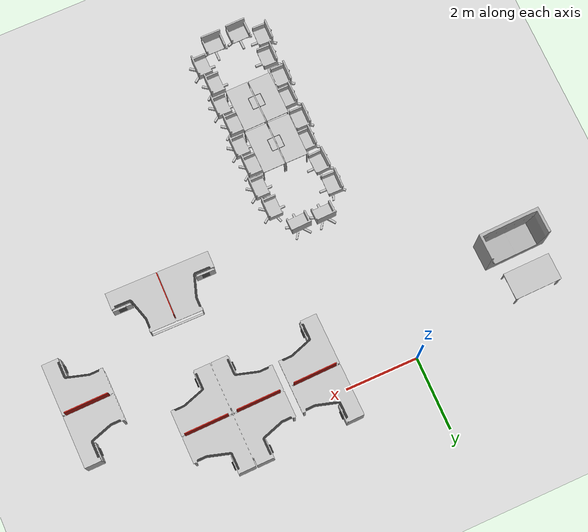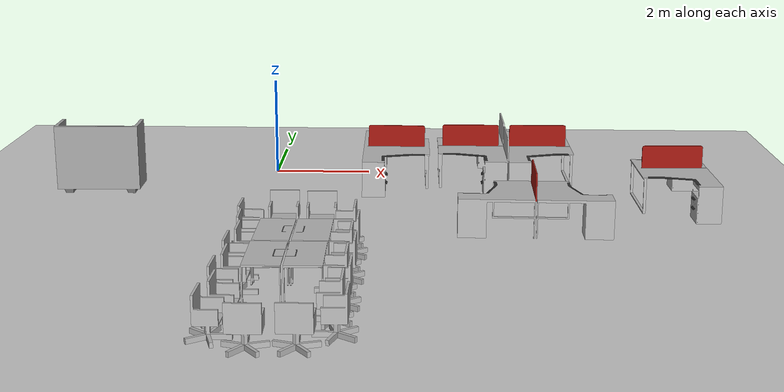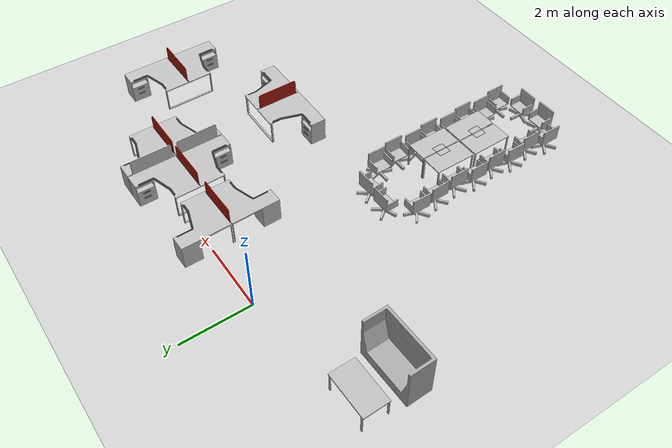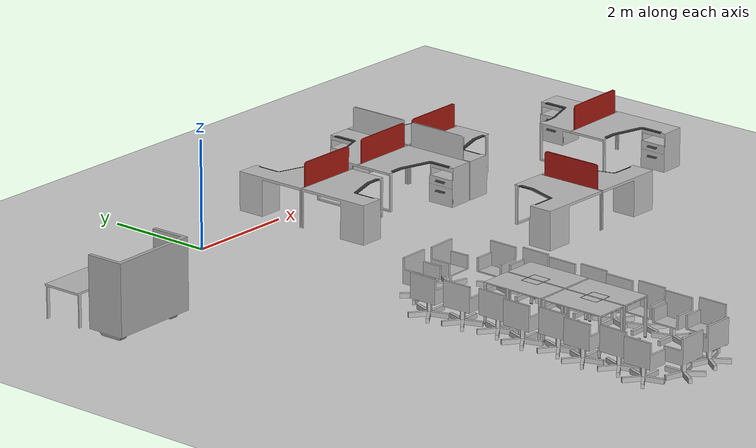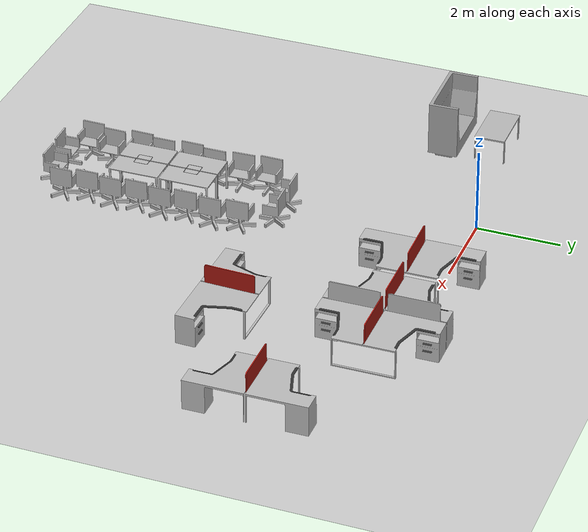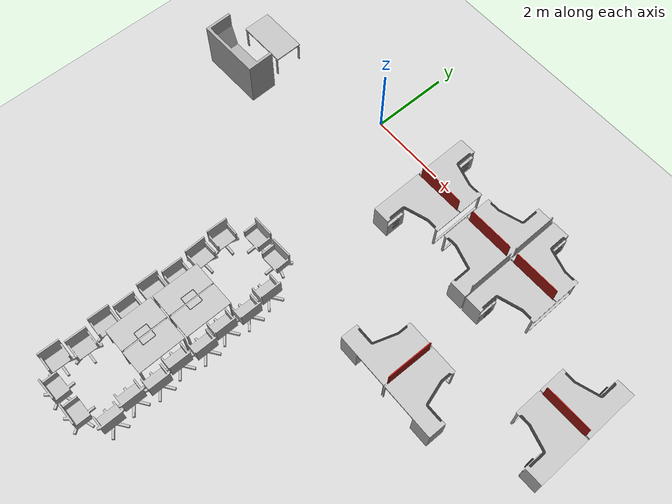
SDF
<sdf version="1.6">
 <world name="default">
  <model name="ground_plane">
   <static>1</static>
   <link name="link">
    <collision name="collision">
     <geometry><plane><normal>0 0 1</normal><size>100 100</size></plane></geometry>
     <surface><friction><ode><mu>100</mu><mu2>50</mu2></ode></friction></surface>
    </collision>
    <visual name="visual">
     <cast_shadows>0</cast_shadows>
     <geometry><plane><normal>0 0 1</normal><size>100 100</size></plane></geometry>
     <material>
      <script><uri>file://media/materials/scripts/gazebo.material</uri><name>Gazebo/Grey</name></script>
     </material>
    </visual>
   </link>
  </model>
  <include>
   <uri>model://rs_gazebo/models/ss_hq4/413_table</uri>
   <name>'413_table_1'</name>
   <pose>1.35826 -6.55524 0.415677 -1e-06 -6e-06 1.57798</pose>
  </include>
  <include>
   <uri>model://rs_gazebo/models/ss_hq4/413_table</uri>
   <name>'413_table_2'</name>
   <pose>0.711378 -7.8122 0.415681 1.2e-05 -6e-06 -1.55968</pose>
  </include>
  <include>
   <uri>model://rs_gazebo/models/ss_hq4/413_table</uri>
   <name>'413_table_3'</name>
   <pose>0.715416 -6.55909 0.41568 -3e-06 -0 -1.56994</pose>
  </include>
  <include>
   <uri>model://rs_gazebo/models/ss_hq4/413_table</uri>
   <name>'413_table_4'</name>
   <pose>1.35714 -7.80696 0.415681 1.2e-05 -6e-06 1.58535</pose>
  </include>
  <include>
   <uri>model://rs_gazebo/models/ss_hq4/413_meeting_chair</uri>
   <name>'413_meeting_chair_2'</name>
   <pose>0.187999 -6.40878 0.281792 -1e-06 -1e-06 1.56988</pose>
  </include>
  <include>
   <uri>model://rs_gazebo/models/ss_hq4/413_meeting_chair</uri>
   <name>'413_meeting_chair_3'</name>
   <pose>0.081497 -7.01654 0.281792 -1e-06 2e-06 1.56307</pose>
  </include>
  <include>
   <uri>model://rs_gazebo/models/ss_hq4/413_meeting_chair</uri>
   <name>'413_meeting_chair_4'</name>
   <pose>0.166702 -7.70382 0.281792 -0 -7e-06 1.57768</pose>
  </include>
  <include>
   <uri>model://rs_gazebo/models/ss_hq4/413_meeting_chair</uri>
   <name>'413_meeting_chair_4_clone'</name>
   <pose>0.058897 -8.30282 0.281792 0 -0 1.55151</pose>
  </include>
  <include>
   <uri>model://rs_gazebo/models/ss_hq4/413_meeting_chair</uri>
   <name>'413_meeting_chair_4_clone_0'</name>
   <pose>0.045568 -5.03866 0.281792 0 -0 1.55331</pose>
  </include>
  <include>
   <uri>model://rs_gazebo/models/ss_hq4/413_meeting_chair</uri>
   <name>'413_meeting_chair_4_clone_clone'</name>
   <pose>0.172639 -8.96147 0.281792 0 -0 1.55151</pose>
  </include>
  <include>
   <uri>model://rs_gazebo/models/ss_hq4/413_meeting_chair</uri>
   <name>'413_meeting_chair_4_clone_clone_0'</name>
   <pose>0.035102 -9.56899 0.281792 0 -0 1.55151</pose>
  </include>
  <include>
   <uri>model://rs_gazebo/models/ss_hq4/413_meeting_chair</uri>
   <name>'413_meeting_chair_4_clone_clone_1'</name>
   <pose>0.675891 -9.98419 0.281792 -1.2e-05 -1.9e-05 -3.12273</pose>
  </include>
  <include>
   <uri>model://rs_gazebo/models/ss_hq4/413_meeting_chair</uri>
   <name>'413_meeting_chair_4_clone_clone_2'</name>
   <pose>1.40384 -9.95187 0.281793 3e-06 2e-06 3.13307</pose>
  </include>
  <include>
   <uri>model://rs_gazebo/models/ss_hq4/413_meeting_chair</uri>
   <name>'413_meeting_chair_4_clone_clone_3'</name>
   <pose>0.638343 -4.35233 0.281792 -7e-06 2e-06 0.022867</pose>
  </include>
  <include>
   <uri>model://rs_gazebo/models/ss_hq4/413_meeting_chair</uri>
   <name>'413_meeting_chair_5'</name>
   <pose>0.112145 -5.70863 0.281792 -2e-06 3e-06 1.60424</pose>
  </include>
  <include>
   <uri>model://rs_gazebo/models/ss_hq4/413_meeting_chair</uri>
   <name>'413_meeting_chair_6'</name>
   <pose>1.87273 -5.0823 0.281792 0 0 -1.57166</pose>
  </include>
  <include>
   <uri>model://rs_gazebo/models/ss_hq4/413_meeting_chair</uri>
   <name>'413_meeting_chair_6_clone'</name>
   <pose>1.96064 -5.71851 0.281792 0 0 -1.57167</pose>
  </include>
  <include>
   <uri>model://rs_gazebo/models/ss_hq4/413_meeting_chair</uri>
   <name>'413_meeting_chair_6_clone_0'</name>
   <pose>1.8845 -6.35544 0.281793 3e-06 8e-06 -1.5717</pose>
  </include>
  <include>
   <uri>model://rs_gazebo/models/ss_hq4/413_meeting_chair</uri>
   <name>'413_meeting_chair_6_clone_1'</name>
   <pose>1.97354 -6.95747 0.281793 2e-06 -2e-06 -1.5716</pose>
  </include>
  <include>
   <uri>model://rs_gazebo/models/ss_hq4/413_meeting_chair</uri>
   <name>'413_meeting_chair_6_clone_2'</name>
   <pose>1.87867 -7.58068 0.281792 -4e-06 -5e-06 -1.57149</pose>
  </include>
  <include>
   <uri>model://rs_gazebo/models/ss_hq4/413_meeting_chair</uri>
   <name>'413_meeting_chair_6_clone_3'</name>
   <pose>1.97177 -8.1842 0.281792 -1e-06 -1e-06 -1.57159</pose>
  </include>
  <include>
   <uri>model://rs_gazebo/models/ss_hq4/413_meeting_chair</uri>
   <name>'413_meeting_chair_6_clone_4'</name>
   <pose>1.88943 -8.8136 0.281792 -1e-06 -0 -1.57177</pose>
  </include>
  <include>
   <uri>model://rs_gazebo/models/ss_hq4/413_meeting_chair</uri>
   <name>'413_meeting_chair_6_clone_5'</name>
   <pose>2.00014 -9.42261 0.281789 7e-06 -5e-06 -1.57182</pose>
  </include>
  <include>
   <uri>model://rs_gazebo/models/ss_hq4/413_meeting_chair</uri>
   <name>'413_meeting_chair_7'</name>
   <pose>1.33346 -4.37606 0.281793 4e-06 8e-06 0.034098</pose>
  </include>
  <include>
   <uri>model://rs_gazebo/models/ss_hq4/414_quartet_table</uri>
   <name>414_quartet_table'</name>
   <pose>4.88042 -0.524938 0.442357 0 0 -1.5605</pose>
  </include>
  <include>
   <uri>model://rs_gazebo/models/ss_hq4/414_double_table</uri>
   <name>'''''414_double_table_clone_0'''_clone''</name>
   <pose>5.23967 -3.95998 0.440053 0.010784 -0 3.12738</pose>
  </include>
  <include>
   <uri>model://rs_gazebo/models/ss_hq4/414_double_table</uri>
   <name>'''''414_double_table_clone_1'''_clone''</name>
   <pose>2.61267 -0.573744 0.440047 0.010772 -6e-06 1.58752</pose>
  </include>
  <include>
   <uri>model://rs_gazebo/models/ss_hq4/414_double_table</uri>
   <name>'''''414_double_table_clone_2'''''</name>
   <pose>8.09862 -2.21125 0.440049 0.010769 5e-06 -1.55937</pose>
  </include>
  <include>
   <uri>model://rs_gazebo/models/ss_hq4/403_sofa</uri>
   <name>403_sofa</name>
   <pose>-3.42091 -1.67887 0.474968 -1e-06 -0 -3.11622</pose>
  </include>
  <include>
   <uri>model://rs_gazebo/models/ss_hq4/403_table</uri>
   <name>403_table</name>
   <pose>-3.51471 -0.633251 0.370989 0 0 -3.12695</pose>
  </include>
 </world>
</sdf>
